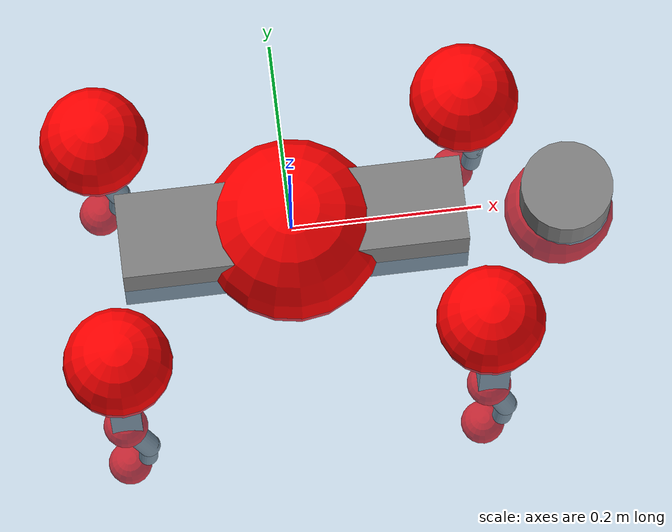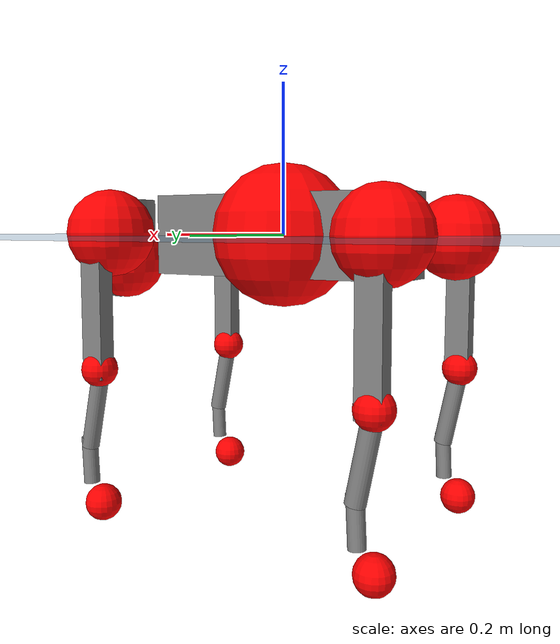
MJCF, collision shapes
<mujoco model="go2">
  <compiler angle="radian" assetdir="assets" balanceinertia="true" inertiafromgeom="false"/>

  <option timestep="0.005" density="1.2" viscosity="2e-05"/>

  <size nkey="1"/>

  <visual>
    <quality shadowsize="8192"/>
    <map shadowclip="0.5"/>
  </visual>

  <default>
    <default class="/">
      <geom contype="0" conaffinity="0" group="1" solref="-1000 -80"/>
      <site size="0.01 0.005 0.005" group="5"/>
      <general forcelimited="true" biastype="affine" gainprm="20" biasprm="0 -20 -0.5"/>
      <default class="go2">
        <joint armature="0.01" damping="0.01" frictionloss="0.2"/>
        <geom condim="1" margin="0.001"/>
        <default class="visual">
          <geom type="mesh" group="2"/>
        </default>
        <default class="collision">
          <geom group="3"/>
          <default class="foot">
            <geom size="0.022 0 0" condim="6" priority="1" friction="0.8 0.02 0.01" solimp="0.015 1 0.022"/>
          </default>
        </default>
        <default class="reward_collision_sphere">
          <geom group="5" rgba="1 0 0 1"/>
        </default>
      </default>
    </default>
  </default>

  <asset>
    <texture type="skybox" colorspace="auto" name="//unnamed_texture_0" builtin="gradient" rgb1="0.95 0.95 0.95" rgb2="0.95 0.95 0.95" width="100" height="600"/>
    <texture type="2d" colorspace="auto" name="texplane" builtin="checker" rgb1="0.345 0.575 0.748" rgb2="0.345 0.575 0.748" markrgb="1 1 1" width="512" height="512"/>
    <material name="MatPlane" class="/" texture="texplane" texuniform="true" texrepeat="2 2" specular="0.9"/>
    <material name="metal" class="/" rgba="0.9 0.95 0.95 1"/>
    <material name="black" class="/" rgba="0 0 0 1"/>
    <material name="white" class="/"/>
    <material name="gray" class="/" rgba="0.671705 0.692426 0.77427 1"/>
    <mesh name="base_0" class="/" file="base_0.obj"/>
    <mesh name="base_1" class="/" file="base_1.obj"/>
    <mesh name="base_2" class="/" file="base_2.obj"/>
    <mesh name="base_3" class="/" file="base_3.obj"/>
    <mesh name="base_4" class="/" file="base_4.obj"/>
    <mesh name="hip_0" class="/" file="hip_0.obj"/>
    <mesh name="hip_1" class="/" file="hip_1.obj"/>
    <mesh name="thigh_0" class="/" file="thigh_0.obj"/>
    <mesh name="thigh_1" class="/" file="thigh_1.obj"/>
    <mesh name="thigh_mirror_0" class="/" file="thigh_mirror_0.obj"/>
    <mesh name="thigh_mirror_1" class="/" file="thigh_mirror_1.obj"/>
    <mesh name="calf_0" class="/" file="calf_0.obj"/>
    <mesh name="calf_1" class="/" file="calf_1.obj"/>
    <mesh name="calf_mirror_0" class="/" file="calf_mirror_0.obj"/>
    <mesh name="calf_mirror_1" class="/" file="calf_mirror_1.obj"/>
    <mesh name="foot" class="/" file="foot.obj"/>
  </asset>

  <worldbody>
    <geom name="floor" class="/" size="100 100 0.125" type="plane" group="0" material="MatPlane"/>
    <light name="toplight_shadow" class="/" pos="0 0 5" dir="0.0990148 0.0990148 -0.990148" type="directional" ambient="0.04 0.04 0.04" diffuse="0.55 0.55 0.55" specular="0.12 0.12 0.12"/>
    <light name="toplight_fill" class="/" pos="0 0 5" dir="0.0990148 0.0990148 -0.990148" type="directional" castshadow="false" ambient="0.04 0.04 0.04" diffuse="0.3 0.3 0.3" specular="0.08 0.08 0.08"/>
    <body name="trunk" childclass="go2" pos="0.000331983 -0.00237715 1.14664e-05" quat="1 -4.33411e-06 3.40485e-05 -2.16337e-05">
      <inertial pos="0.0207221 -0.00268928 -0.00485109" quat="-0.000350405 0.722078 -0.00187857 0.691809" mass="6.05171" diaginertia="0.112145 0.107181 0.0109263"/>
      <joint name="//unnamed_joint_0" type="free" armature="0" damping="0" frictionloss="0"/>
      <geom name="//unnamed_geom_1" class="visual" material="black" mesh="base_0"/>
      <geom name="//unnamed_geom_2" class="visual" material="black" mesh="base_1"/>
      <geom name="//unnamed_geom_3" class="visual" material="black" mesh="base_2"/>
      <geom name="//unnamed_geom_4" class="visual" material="white" mesh="base_3"/>
      <geom name="//unnamed_geom_5" class="visual" material="gray" mesh="base_4"/>
      <geom name="trunk_1" class="collision" size="0.180902 0.0449611 0.0548189" type="box"/>
      <geom name="trunk_2" class="collision" size="0.0480868 0.0432781" pos="0.288299 0 0.00852094" type="cylinder"/>
      <geom name="trunk_3" class="collision" size="0.0452016" pos="0.296391 0 -0.0511256"/>
      <geom name="//unnamed_geom_9" class="reward_collision_sphere" size="0.0961735"/>
      <geom name="//unnamed_geom_10" class="reward_collision_sphere" size="0.0577041" pos="0.283241 0 -0.0383442"/>
      <site name="imu" pos="-0.0145099 0.00578343 0.0241988" size="0.00961735"/>
      <camera name="track" pos="0 -2.04307 0" quat="0.707107 0.707107 0 0" mode="trackcom"/>
      <camera name="ego_camera" pos="0.315611 0 0.0383442" quat="-0.5 -0.5 0.5 0.5"/>
      <body name="FL_hip" pos="0.196908 0.0500362 0.00281922" quat="0.999999 0.000742643 -0.000278077 0.000814391">
        <inertial pos="-0.00464009 0.00209884 0.000905293" quat="0.497045 0.49851 0.506253 0.498138" mass="0.582132" diaginertia="0.000935024 0.000635832 0.00021621"/>
        <joint name="FL_hip_joint" pos="0 0 0" axis="0.999999 -0.000284411 0.0010191" stiffness="0.0152096" range="-0.999384 1.06456" armature="0.00928546" damping="0" frictionloss="0.2102"/>
        <geom name="//unnamed_geom_11" class="visual" material="metal" mesh="hip_0"/>
        <geom name="//unnamed_geom_12" class="visual" material="gray" mesh="hip_1"/>
        <geom name="//unnamed_geom_13" class="collision" size="0.0442398 0.0192347" pos="0 0.0817229 0" quat="0.707107 0.707107 0 0" type="cylinder"/>
        <geom name="//unnamed_geom_14" class="reward_collision_sphere" size="0.0577041" pos="0 0.0715076 0"/>
        <body name="FL_thigh" pos="0.000143991 0.0999225 0.00156634" quat="0.999999 0.00021062 0.000875851 0.00072888">
          <inertial pos="-0.00183851 -0.0212668 -0.028715" quat="0.82512 0.0942399 -0.013616 0.556875" mass="1.02439" diaginertia="0.00633472 0.00655873 0.00040138"/>
          <joint name="FL_thigh_joint" pos="0 0 0" axis="0.0139167 0.999842 -0.0110344" stiffness="0.00688851" range="-1.55613 3.54567" armature="0.010834" damping="0" frictionloss="0.188719"/>
          <geom name="//unnamed_geom_15" class="visual" material="metal" mesh="thigh_0"/>
          <geom name="//unnamed_geom_16" class="visual" material="gray" mesh="thigh_1"/>
          <geom name="//unnamed_geom_17" class="collision" size="0.102425 0.0117813 0.0163495" pos="0 0 -0.090748" quat="0.707107 0 0.707107 0" type="box"/>
          <body name="FL_calf" pos="0.000935586 -0.00317009 -0.18148" quat="1 3.48042e-05 3.37494e-05 0.000490975">
            <inertial pos="0.00818796 -0.000413605 -0.122695" quat="0.711702 0.00204001 -0.00412245 0.702466" mass="0.215067" diaginertia="0.00152635 0.00167639 2.29687e-05"/>
            <joint name="FL_calf_joint" pos="0 0 0" axis="-0.00408357 0.99998 0.00489813" range="-2.77547 -0.842218" armature="0.00885962" damping="0.0035855" frictionloss="0.190475"/>
            <geom name="//unnamed_geom_18" class="visual" material="gray" mesh="calf_0"/>
            <geom name="//unnamed_geom_19" class="visual" material="black" mesh="calf_1"/>
            <geom name="FL_calf0" class="collision" size="0.0115408 0.0577041" pos="0.0080926 0 -0.0511256" quat="0.994493 0 -0.104807 0" type="cylinder"/>
            <geom name="//unnamed_geom_21" class="collision" size="0.0105791 0.0312564" pos="0.0202315 0 -0.12611" quat="0.999688 0 0.0249974 0" type="cylinder"/>
            <geom name="//unnamed_geom_22" class="visual" pos="0 0 -0.181496" quat="1 0 0 0" material="black" mesh="foot"/>
            <geom name="FL_foot" class="foot" size="0.0162905" pos="-0.00202315 0 -0.181496"/>
            <geom name="//unnamed_geom_24" class="reward_collision_sphere" size="0.0240434"/>
            <geom name="//unnamed_geom_25" class="reward_collision_sphere" size="0.0240434" pos="-0.00202315 0 -0.181496"/>
            <site name="FL_foot" class="foot" pos="-0.00202315 0 -0.181496" size="0.00961735"/>
          </body>
        </body>
      </body>
      <body name="FR_hip" pos="0.195006 -0.0489233 -0.00216687" quat="1 0.000178257 -0.000111075 -0.000306261">
        <inertial pos="-0.00459528 -0.00275507 -0.00122528" quat="0.498266 0.506272 0.50016 0.495237" mass="0.583587" diaginertia="0.000946931 0.000643159 0.000222542"/>
        <joint name="FR_hip_joint" pos="0 0 0" axis="0.999967 0.0027624 0.00759568" stiffness="0.000392889" range="-1.0493 1.0401" armature="0.00918407" damping="0.013158" frictionloss="0.187644"/>
        <geom name="//unnamed_geom_26" class="visual" pos="0 1.47612e-09 6.33136e-08" quat="4.63268e-05 1 0 0" material="metal" mesh="hip_0"/>
        <geom name="//unnamed_geom_27" class="visual" pos="0 2.39296e-09 -1.56599e-07" quat="4.63268e-05 1 0 0" material="gray" mesh="hip_1"/>
        <geom name="//unnamed_geom_28" class="collision" size="0.0442398 0.0192347" pos="0 -0.0817229 0" quat="0.707107 0.707107 0 0" type="cylinder"/>
        <geom name="//unnamed_geom_29" class="reward_collision_sphere" size="0.0577041" pos="0 -0.0715076 0"/>
        <body name="FR_thigh" pos="0.00295995 -0.095314 0.002914" quat="1 0.000141811 -0.000194692 0.00020324">
          <inertial pos="-0.00290108 0.0202162 -0.0281602" quat="0.55576 -0.0223884 0.080201 0.827162" mass="1.0851" diaginertia="0.00651857 0.00669466 0.00040874"/>
          <joint name="FR_thigh_joint" pos="0 0 0" axis="-0.000703626 -1 -0.000104303" stiffness="0.0021969" range="-3.54419 1.57082" armature="0.00952692" damping="0.00997171" frictionloss="0.192002"/>
          <geom name="//unnamed_geom_30" class="visual" material="metal" mesh="thigh_mirror_0"/>
          <geom name="//unnamed_geom_31" class="visual" material="gray" mesh="thigh_mirror_1"/>
          <geom name="//unnamed_geom_32" class="collision" size="0.102425 0.0117813 0.0163495" pos="0 0 -0.090748" quat="0.707107 0 0.707107 0" type="box"/>
          <body name="FR_calf" pos="-0.00292234 -0.000347928 -0.182772" quat="0.999999 0.00106441 -0.000702741 0.000402038">
            <inertial pos="0.00637719 0.000677791 -0.119" quat="0.706385 -0.000527835 -0.00324956 0.70782" mass="0.215004" diaginertia="0.00155834 0.00162784 2.36686e-05"/>
            <joint name="FR_calf_joint" pos="0 0 0" axis="0.0111457 -0.999915 0.00677118" range="0.819838 2.7329" armature="0.0108609" damping="0.0233702" frictionloss="0.167027"/>
            <geom name="//unnamed_geom_33" class="visual" material="gray" mesh="calf_mirror_0"/>
            <geom name="//unnamed_geom_34" class="visual" material="black" mesh="calf_mirror_1"/>
            <geom name="FR_calf0" class="collision" size="0.0125026 0.0577041" pos="0.0101157 0 -0.0511256" quat="0.995004 0 -0.0998334 0" type="cylinder"/>
            <geom name="//unnamed_geom_36" class="collision" size="0.0105791 0.0312564" pos="0.0202315 0 -0.12611" quat="0.999688 0 0.0249974 0" type="cylinder"/>
            <geom name="//unnamed_geom_37" class="visual" pos="0 0 -0.181496" quat="1 0 0 0" material="black" mesh="foot"/>
            <geom name="FR_foot" class="foot" size="0.0206948" pos="-0.00202315 0 -0.181496"/>
            <geom name="//unnamed_geom_39" class="reward_collision_sphere" size="0.0240434"/>
            <geom name="//unnamed_geom_40" class="reward_collision_sphere" size="0.0240434" pos="-0.00202315 0 -0.181496"/>
            <site name="FR_foot" class="foot" pos="-0.00202315 0 -0.181496" size="0.00961735"/>
          </body>
        </body>
      </body>
      <body name="RL_hip" pos="-0.195561 0.0487529 0.00128422" quat="1 3.19921e-05 3.86232e-05 -4.96166e-06">
        <inertial pos="0.00514908 -0.000256219 0.00127444" quat="0.501664 0.499924 0.498221 0.500186" mass="0.596747" diaginertia="0.000935505 0.000663976 0.000216512"/>
        <joint name="RL_hip_joint" pos="0 0 0" axis="-0.999905 0.0137186 0.00127714" stiffness="0.00186433" range="-1.06751 1.04173" armature="0.00976944" damping="0.0141791" frictionloss="0.182345"/>
        <geom name="//unnamed_geom_41" class="visual" pos="-1.38933e-09 0 -2.72341e-07" quat="4.63268e-05 0 1 0" material="metal" mesh="hip_0"/>
        <geom name="//unnamed_geom_42" class="visual" pos="-2.25227e-09 0 -2.41528e-07" quat="4.63268e-05 0 1 0" material="gray" mesh="hip_1"/>
        <geom name="//unnamed_geom_43" class="collision" size="0.0442398 0.0192347" pos="0 0.0817229 0" quat="0.707107 0.707107 0 0" type="cylinder"/>
        <geom name="//unnamed_geom_44" class="reward_collision_sphere" size="0.0577041" pos="0 0.0715076 0"/>
        <body name="RL_thigh" pos="-0.00141749 0.097931 -0.00177338" quat="1 4.15219e-05 0.000356479 0.000387388">
          <inertial pos="-0.00382997 -0.0224776 -0.0307056" quat="0.827816 0.0876343 -0.0153019 0.553902" mass="1.05262" diaginertia="0.00635302 0.00647103 0.000392998"/>
          <joint name="RL_thigh_joint" pos="0 0 0" axis="0.000647066 0.999995 0.00316115" stiffness="0.00267432" range="-0.569323 4.56523" armature="0.00972601" damping="0" frictionloss="0.1924"/>
          <geom name="//unnamed_geom_45" class="visual" material="metal" mesh="thigh_0"/>
          <geom name="//unnamed_geom_46" class="visual" material="gray" mesh="thigh_1"/>
          <geom name="//unnamed_geom_47" class="collision" size="0.102425 0.0117813 0.0163495" pos="0 0 -0.090748" quat="0.707107 0 0.707107 0" type="box"/>
          <body name="RL_calf" pos="-0.00143294 -0.00310121 -0.18217" quat="1 0.000470893 4.02533e-07 -0.000360964">
            <inertial pos="0.00622804 -0.000877036 -0.119743" quat="0.711233 0.00266504 -0.00246754 0.702947" mass="0.222467" diaginertia="0.00165982 0.00164671 2.43554e-05"/>
            <joint name="RL_calf_joint" pos="0 0 0" axis="0.0107169 0.999942 0.000774217" stiffness="0.000148566" range="-2.66848 -0.882797" armature="0.0099157" damping="0.0031363" frictionloss="0.191184"/>
            <geom name="//unnamed_geom_48" class="visual" material="gray" mesh="calf_0"/>
            <geom name="//unnamed_geom_49" class="visual" material="black" mesh="calf_1"/>
            <geom name="RL_calf0" class="collision" size="0.0125026 0.0577041" pos="0.0101157 0 -0.0511256" quat="0.995004 0 -0.0998334 0" type="cylinder"/>
            <geom name="//unnamed_geom_51" class="collision" size="0.0105791 0.0312564" pos="0.0202315 0 -0.12611" quat="0.999688 0 0.0249974 0" type="cylinder"/>
            <geom name="//unnamed_geom_52" class="visual" pos="0 0 -0.181496" quat="1 0 0 0" material="black" mesh="foot"/>
            <geom name="RL_foot" class="foot" size="0.0183719" pos="-0.00202315 0 -0.181496"/>
            <geom name="//unnamed_geom_54" class="reward_collision_sphere" size="0.0240434"/>
            <geom name="//unnamed_geom_55" class="reward_collision_sphere" size="0.0240434" pos="-0.00202315 0 -0.181496"/>
            <site name="RL_foot" class="foot" pos="-0.00202315 0 -0.181496" size="0.00961735"/>
          </body>
        </body>
      </body>
      <body name="RR_hip" pos="-0.196569 -0.0480975 -0.00298792" quat="0.999999 0.000624782 -0.000966396 0.000400766">
        <inertial pos="0.0044088 0.000745212 -0.00182176" quat="0.50003 0.500062 0.494046 0.505792" mass="0.616288" diaginertia="0.000977523 0.000670066 0.000226304"/>
        <joint name="RR_hip_joint" pos="0 0 0" axis="-0.99993 -0.0074953 0.00915543" range="-1.0368 0.993022" armature="0.00966353" damping="0.00376715" frictionloss="0.190255"/>
        <geom name="//unnamed_geom_56" class="visual" pos="1.38968e-09 1.47612e-09 -3.35655e-07" quat="2.14617e-09 4.63268e-05 4.63268e-05 -1" material="metal" mesh="hip_0"/>
        <geom name="//unnamed_geom_57" class="visual" pos="2.25142e-09 2.39296e-09 -8.4929e-08" quat="2.14617e-09 4.63268e-05 4.63268e-05 -1" material="gray" mesh="hip_1"/>
        <geom name="//unnamed_geom_58" class="collision" size="0.0442398 0.0192347" pos="0 -0.0817229 0" quat="0.707107 0.707107 0 0" type="cylinder"/>
        <geom name="//unnamed_geom_59" class="reward_collision_sphere" size="0.0577041" pos="0 -0.0715076 0"/>
        <body name="RR_thigh" pos="0.00016113 -0.0954733 0.000883524" quat="0.999999 0.000950264 -0.000691831 0.000759337">
          <inertial pos="-0.00366181 0.0201174 -0.0264725" quat="0.54981 -0.0185999 0.0802387 0.831219" mass="1.01392" diaginertia="0.00620109 0.00642986 0.000387589"/>
          <joint name="RR_thigh_joint" pos="0 0 0" axis="-0.00748505 -0.99997 -0.00221327" range="-4.55208 0.548303" armature="0.00935641" damping="0.0194812" frictionloss="0.183032"/>
          <geom name="//unnamed_geom_60" class="visual" material="metal" mesh="thigh_mirror_0"/>
          <geom name="//unnamed_geom_61" class="visual" material="gray" mesh="thigh_mirror_1"/>
          <geom name="//unnamed_geom_62" class="collision" size="0.102425 0.0117813 0.0163495" pos="0 0 -0.090748" quat="0.707107 0 0.707107 0" type="box"/>
          <body name="RR_calf" pos="-0.00171881 -0.000887293 -0.181829" quat="1 8.75173e-05 0.000262615 2.15754e-05">
            <inertial pos="0.00858111 0.00080198 -0.119546" quat="0.702907 -0.00532935 0.000864755 0.711261" mass="0.213799" diaginertia="0.00163314 0.00164658 2.35678e-05"/>
            <joint name="RR_calf_joint" pos="0 0 0" axis="-0.00379222 -0.999959 0.00826683" range="0.786612 2.78086" armature="0.00830251" damping="0.00990353" frictionloss="0.191052"/>
            <geom name="//unnamed_geom_63" class="visual" material="gray" mesh="calf_mirror_0"/>
            <geom name="//unnamed_geom_64" class="visual" material="black" mesh="calf_mirror_1"/>
            <geom name="RR_calf0" class="collision" size="0.0125026 0.0577041" pos="0.0101157 0 -0.0511256" quat="0.995004 0 -0.0998334 0" type="cylinder"/>
            <geom name="//unnamed_geom_66" class="collision" size="0.0105791 0.0312564" pos="0.0202315 0 -0.12611" quat="0.999688 0 0.0249974 0" type="cylinder"/>
            <geom name="//unnamed_geom_67" class="visual" pos="0 0 -0.181496" quat="1 0 0 0" material="black" mesh="foot"/>
            <geom name="RR_foot" class="foot" size="0.0195323" pos="-0.00202315 0 -0.181496"/>
            <geom name="//unnamed_geom_69" class="reward_collision_sphere" size="0.0240434"/>
            <geom name="//unnamed_geom_70" class="reward_collision_sphere" size="0.0240434" pos="-0.00202315 0 -0.181496"/>
            <site name="RR_foot" class="foot" pos="-0.00202315 0 -0.181496" size="0.00961735"/>
          </body>
        </body>
      </body>
    </body>
  </worldbody>

  <contact>
    <pair class="/" geom1="floor" geom2="FL_foot" name="//unnamed_contact_0"/>
    <pair class="/" geom1="floor" geom2="FR_foot" name="//unnamed_contact_1"/>
    <pair class="/" geom1="floor" geom2="RL_foot" name="//unnamed_contact_2"/>
    <pair class="/" geom1="floor" geom2="RR_foot" name="//unnamed_contact_3"/>
  </contact>

  <actuator>
    <general name="FL_hip" class="/" joint="FL_hip_joint" forcerange="-24.9377 24.9377" gainprm="20.6316" biasprm="0 -20.6316 -0.473825"/>
    <general name="FL_thigh" class="/" joint="FL_thigh_joint" forcerange="-21.3859 21.3859" gainprm="20.6316" biasprm="0 -20.6316 -0.473825"/>
    <general name="FL_calf" class="/" joint="FL_calf_joint" forcerange="-44.9426 44.9426" gainprm="20.6316" biasprm="0 -20.6316 -0.473825"/>
    <general name="FR_hip" class="/" joint="FR_hip_joint" forcerange="-25.0639 25.0639" gainprm="20.6316" biasprm="0 -20.6316 -0.473825"/>
    <general name="FR_thigh" class="/" joint="FR_thigh_joint" forcerange="-25.0627 25.0627" gainprm="20.6316" biasprm="0 -20.6316 -0.473825"/>
    <general name="FR_calf" class="/" joint="FR_calf_joint" forcerange="-46.5423 46.5423" gainprm="20.6316" biasprm="0 -20.6316 -0.473825"/>
    <general name="RL_hip" class="/" joint="RL_hip_joint" forcerange="-23.666 23.666" gainprm="20.6316" biasprm="0 -20.6316 -0.473825"/>
    <general name="RL_thigh" class="/" joint="RL_thigh_joint" forcerange="-22.1774 22.1774" gainprm="20.6316" biasprm="0 -20.6316 -0.473825"/>
    <general name="RL_calf" class="/" joint="RL_calf_joint" forcerange="-41.7725 41.7725" gainprm="20.6316" biasprm="0 -20.6316 -0.473825"/>
    <general name="RR_hip" class="/" joint="RR_hip_joint" forcerange="-20.549 20.549" gainprm="20.6316" biasprm="0 -20.6316 -0.473825"/>
    <general name="RR_thigh" class="/" joint="RR_thigh_joint" forcerange="-23.2746 23.2746" gainprm="20.6316" biasprm="0 -20.6316 -0.473825"/>
    <general name="RR_calf" class="/" joint="RR_calf_joint" forcerange="-43.1229 43.1229" gainprm="20.6316" biasprm="0 -20.6316 -0.473825"/>
  </actuator>

  <sensor>
    <gyro site="imu" name="imu_angular_velocity"/>
    <velocimeter site="imu" name="imu_linear_velocity"/>
    <framelinvel objtype="site" objname="FL_foot" name="FL_foot_global_linear_velocity"/>
    <framelinvel objtype="site" objname="FR_foot" name="FR_foot_global_linear_velocity"/>
    <framelinvel objtype="site" objname="RL_foot" name="RL_foot_global_linear_velocity"/>
    <framelinvel objtype="site" objname="RR_foot" name="RR_foot_global_linear_velocity"/>
  </sensor>

  <keyframe>
    <key name="home" qpos="0 0 0.325 1 0 0 0 0.1 0.8 -1.5 -0.1 -0.8 1.5 -0.1 0.8 -1.5 0.1 -0.8 1.5"/>
  </keyframe>
</mujoco>
